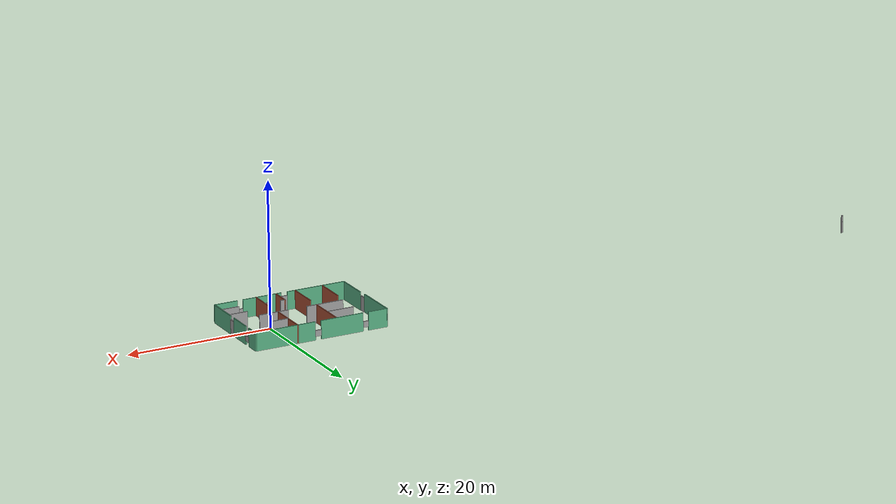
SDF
<?xml version='1.0'?>
<sdf version='1.6'>
  <model name='build1'>
    <pose frame=''>-39.8347 0.470993 0 0 -0 0</pose>
    <link name='Door_0'>
      <collision name='Door_0_Collision'>
        <geometry>
          <box>
            <size>0.9 0.17 2</size>
          </box>
        </geometry>
        <pose frame=''>0 0 1 0 -0 0</pose>
      </collision>
      <visual name='Door_0_Visual'>
        <pose frame=''>0 0 1 0 -0 0</pose>
        <geometry>
          <box>
            <size>0.9 0.17 2</size>
          </box>
        </geometry>
        <material>
          <script>
            <uri>file://media/materials/scripts/gazebo.material</uri>
            <name>Gazebo/Grey</name>
          </script>
        </material>
      </visual>
      <pose frame=''>45.0843 -0.717409 0 0 -0 1.57457</pose>
    </link>
    <link name='Door_1'>
      <collision name='Door_1_Collision'>
        <geometry>
          <box>
            <size>0.9 0.17 2</size>
          </box>
        </geometry>
        <pose frame=''>0 0 1 0 -0 0</pose>
      </collision>
      <visual name='Door_1_Visual'>
        <pose frame=''>0 0 1 0 -0 0</pose>
        <geometry>
          <box>
            <size>0.9 0.17 2</size>
          </box>
        </geometry>
        <material>
          <script>
            <uri>file://media/materials/scripts/gazebo.material</uri>
            <name>Gazebo/Grey</name>
          </script>
        </material>
      </visual>
      <pose frame=''>26.4039 -0.738595 0 0 0 -1.54814</pose>
    </link>
    <link name='Door_2'>
      <collision name='Door_2_Collision'>
        <geometry>
          <box>
            <size>0.9 0.17 2</size>
          </box>
        </geometry>
        <pose frame=''>0 0 1 0 -0 0</pose>
      </collision>
      <visual name='Door_2_Visual'>
        <pose frame=''>0 0 1 0 -0 0</pose>
        <geometry>
          <box>
            <size>0.9 0.17 2</size>
          </box>
        </geometry>
        <material>
          <script>
            <uri>file://media/materials/scripts/gazebo.material</uri>
            <name>Gazebo/Grey</name>
          </script>
        </material>
      </visual>
      <pose frame=''>35.2042 -5.93481 0 0 -0 0</pose>
    </link>
    <link name='Wall_11'>
      <collision name='Wall_11_Collision'>
        <geometry>
          <box>
            <size>0.25 0.15 2.5</size>
          </box>
        </geometry>
        <pose frame=''>0 0 1.25 0 -0 0</pose>
      </collision>
      <visual name='Wall_11_Visual'>
        <pose frame=''>0 0 1.25 0 -0 0</pose>
        <geometry>
          <box>
            <size>0.25 0.15 2.5</size>
          </box>
        </geometry>
        <material>
          <script>
            <uri>file://media/materials/scripts/gazebo.material</uri>
            <name>Gazebo/Grey</name>
          </script>
          <ambient>1 1 1 1</ambient>
        </material>
        <meta>
          <layer>0</layer>
        </meta>
      </visual>
      <pose frame=''>-45.0458 2.82702 0 0 -0 3.14159</pose>
    </link>
    <link name='Wall_12'>
      <collision name='Wall_12_Collision'>
        <geometry>
          <box>
            <size>0.16 0.15 2.5</size>
          </box>
        </geometry>
        <pose frame=''>0 0 1.25 0 -0 0</pose>
      </collision>
      <visual name='Wall_12_Visual'>
        <pose frame=''>0 0 1.25 0 -0 0</pose>
        <geometry>
          <box>
            <size>0.16 0.15 2.5</size>
          </box>
        </geometry>
        <material>
          <script>
            <uri>file://media/materials/scripts/gazebo.material</uri>
            <name>Gazebo/Grey</name>
          </script>
          <ambient>1 1 1 1</ambient>
        </material>
        <meta>
          <layer>0</layer>
        </meta>
      </visual>
      <pose frame=''>-45.0908 2.82702 0 0 -0 0</pose>
    </link>
    <link name='Wall_13'>
      <collision name='Wall_13_Collision'>
        <geometry>
          <box>
            <size>0.16 0.15 2.5</size>
          </box>
        </geometry>
        <pose frame=''>0 0 1.25 0 -0 0</pose>
      </collision>
      <visual name='Wall_13_Visual'>
        <pose frame=''>0 0 1.25 0 -0 0</pose>
        <geometry>
          <box>
            <size>0.16 0.15 2.5</size>
          </box>
        </geometry>
        <material>
          <script>
            <uri>file://media/materials/scripts/gazebo.material</uri>
            <name>Gazebo/Grey</name>
          </script>
          <ambient>1 1 1 1</ambient>
        </material>
        <meta>
          <layer>0</layer>
        </meta>
      </visual>
      <pose frame=''>-45.0808 2.82702 0 0 -0 0</pose>
    </link>
    <link name='Wall_17'>
      <collision name='Wall_17_Collision'>
        <geometry>
          <box>
            <size>6.25 0.15 2.5</size>
          </box>
        </geometry>
        <pose frame=''>0 0 1.25 0 -0 0</pose>
      </collision>
      <visual name='Wall_17_Visual'>
        <pose frame=''>0 0 1.25 0 -0 0</pose>
        <geometry>
          <box>
            <size>6.25 0.15 2.5</size>
          </box>
        </geometry>
        <material>
          <script>
            <uri>file://media/materials/scripts/gazebo.material</uri>
            <name>Gazebo/Grey</name>
          </script>
          <ambient>0.333333 0.666667 0.498039 1</ambient>
        </material>
        <meta>
          <layer>0</layer>
        </meta>
      </visual>
      <pose frame=''>26.3777 2.87375 0 0 -0 1.5708</pose>
    </link>
    <link name='Wall_18'>
      <collision name='Wall_18_Collision'>
        <geometry>
          <box>
            <size>2.75 0.15 2.5</size>
          </box>
        </geometry>
        <pose frame=''>0 0 1.25 0 -0 0</pose>
      </collision>
      <visual name='Wall_18_Visual'>
        <pose frame=''>0 0 1.25 0 -0 0</pose>
        <geometry>
          <box>
            <size>2.75 0.15 2.5</size>
          </box>
        </geometry>
        <material>
          <script>
            <uri>file://media/materials/scripts/gazebo.material</uri>
            <name>Gazebo/Grey</name>
          </script>
          <ambient>0.333333 0.666667 0.498039 1</ambient>
        </material>
        <meta>
          <layer>0</layer>
        </meta>
      </visual>
      <pose frame=''>27.6777 5.92375 0 0 -0 0</pose>
    </link>
    <link name='Wall_20'>
      <collision name='Wall_20_Collision'>
        <geometry>
          <box>
            <size>6 0.15 2.5</size>
          </box>
        </geometry>
        <pose frame=''>0 0 1.25 0 -0 0</pose>
      </collision>
      <visual name='Wall_20_Visual'>
        <pose frame=''>0 0 1.25 0 -0 0</pose>
        <geometry>
          <box>
            <size>6 0.15 2.5</size>
          </box>
        </geometry>
        <material>
          <script>
            <uri>file://media/materials/scripts/gazebo.material</uri>
            <name>Gazebo/Grey</name>
          </script>
          <ambient>0.333333 0.666667 0.498039 1</ambient>
        </material>
        <meta>
          <layer>0</layer>
        </meta>
      </visual>
      <pose frame=''>32.8366 5.92903 0 0 -0 0</pose>
    </link>
    <link name='Wall_22'>
      <collision name='Wall_22_Collision'>
        <geometry>
          <box>
            <size>8.5 0.15 2.5</size>
          </box>
        </geometry>
        <pose frame=''>0 0 1.25 0 -0 0</pose>
      </collision>
      <visual name='Wall_22_Visual'>
        <pose frame=''>0 0 1.25 0 -0 0</pose>
        <geometry>
          <box>
            <size>8.5 0.15 2.5</size>
          </box>
        </geometry>
        <material>
          <script>
            <uri>file://media/materials/scripts/gazebo.material</uri>
            <name>Gazebo/Grey</name>
          </script>
          <ambient>0.333333 0.666667 0.498039 1</ambient>
        </material>
        <meta>
          <layer>0</layer>
        </meta>
      </visual>
      <pose frame=''>40.8919 5.93293 0 0 -0 0</pose>
    </link>
    <link name='Wall_25'>
      <collision name='Wall_25_Collision'>
        <geometry>
          <box>
            <size>2 0.15 2.5</size>
          </box>
        </geometry>
        <pose frame=''>0 0 1.25 0 -0 0</pose>
      </collision>
      <visual name='Wall_25_Visual'>
        <pose frame=''>0 0 1.25 0 -0 0</pose>
        <geometry>
          <box>
            <size>2 0.15 2.5</size>
          </box>
        </geometry>
        <material>
          <script>
            <uri>file://media/materials/scripts/gazebo.material</uri>
            <name>Gazebo/Grey</name>
          </script>
          <ambient>0.333333 0.666667 0.498039 1</ambient>
        </material>
        <meta>
          <layer>0</layer>
        </meta>
      </visual>
      <pose frame=''>45.0669 5.00793 0 0 0 -1.5708</pose>
    </link>
    <link name='Wall_27'>
      <collision name='Wall_27_Collision'>
        <geometry>
          <box>
            <size>3.5 0.15 2.5</size>
          </box>
        </geometry>
        <pose frame=''>0 0 1.25 0 -0 0</pose>
      </collision>
      <visual name='Wall_27_Visual'>
        <pose frame=''>0 0 1.25 0 -0 0</pose>
        <geometry>
          <box>
            <size>3.5 0.15 2.5</size>
          </box>
        </geometry>
        <material>
          <script>
            <uri>file://media/materials/scripts/gazebo.material</uri>
            <name>Gazebo/Grey</name>
          </script>
          <ambient>0.333333 0.666667 0.498039 1</ambient>
        </material>
        <meta>
          <layer>0</layer>
        </meta>
      </visual>
      <pose frame=''>45.0839 1.47452 0 0 0 -1.5708</pose>
    </link>
    <link name='Wall_29'>
      <collision name='Wall_29_Collision'>
        <geometry>
          <box>
            <size>4.75 0.15 2.5</size>
          </box>
        </geometry>
        <pose frame=''>0 0 1.25 0 -0 0</pose>
      </collision>
      <visual name='Wall_29_Visual'>
        <pose frame=''>0 0 1.25 0 -0 0</pose>
        <geometry>
          <box>
            <size>4.75 0.15 2.5</size>
          </box>
        </geometry>
        <material>
          <script>
            <uri>file://media/materials/scripts/gazebo.material</uri>
            <name>Gazebo/Grey</name>
          </script>
          <ambient>0.333333 0.666667 0.498039 1</ambient>
        </material>
        <meta>
          <layer>0</layer>
        </meta>
      </visual>
      <pose frame=''>26.4915 -3.62589 0 0 0 -1.5708</pose>
    </link>
    <link name='Wall_30'>
      <collision name='Wall_30_Collision'>
        <geometry>
          <box>
            <size>7.25 0.15 2.5</size>
          </box>
        </geometry>
        <pose frame=''>0 0 1.25 0 -0 0</pose>
      </collision>
      <visual name='Wall_30_Visual'>
        <pose frame=''>0 0 1.25 0 -0 0</pose>
        <geometry>
          <box>
            <size>7.25 0.15 2.5</size>
          </box>
        </geometry>
        <material>
          <script>
            <uri>file://media/materials/scripts/gazebo.material</uri>
            <name>Gazebo/Grey</name>
          </script>
          <ambient>0.333333 0.666667 0.498039 1</ambient>
        </material>
        <meta>
          <layer>0</layer>
        </meta>
      </visual>
      <pose frame=''>30.0415 -5.92589 0 0 -0 0</pose>
    </link>
    <link name='Wall_31'>
      <collision name='Wall_31_Collision'>
        <geometry>
          <box>
            <size>4.5 0.15 2.5</size>
          </box>
        </geometry>
        <pose frame=''>0 0 1.25 0 -0 0</pose>
      </collision>
      <visual name='Wall_31_Visual'>
        <pose frame=''>0 0 1.25 0 -0 0</pose>
        <geometry>
          <box>
            <size>4.5 0.15 2.5</size>
          </box>
        </geometry>
        <material>
          <script>
            <uri>file://media/materials/scripts/gazebo.material</uri>
            <name>Gazebo/Bricks</name>
          </script>
          <ambient>1 1 1 1</ambient>
        </material>
        <meta>
          <layer>0</layer>
        </meta>
      </visual>
      <pose frame=''>33.5915 -3.75089 0 0 -0 1.5708</pose>
    </link>
    <link name='Wall_33'>
      <collision name='Wall_33_Collision'>
        <geometry>
          <box>
            <size>1.25 0.15 2.5</size>
          </box>
        </geometry>
        <pose frame=''>0 0 1.25 0 -0 0</pose>
      </collision>
      <visual name='Wall_33_Visual'>
        <pose frame=''>0 0 1.25 0 -0 0</pose>
        <geometry>
          <box>
            <size>1.25 0.15 2.5</size>
          </box>
        </geometry>
        <material>
          <script>
            <uri>file://media/materials/scripts/gazebo.material</uri>
            <name>Gazebo/Grey</name>
          </script>
          <ambient>0.333333 0.666667 0.498039 1</ambient>
        </material>
        <meta>
          <layer>0</layer>
        </meta>
      </visual>
      <pose frame=''>34.1415 -5.92589 0 0 -0 0</pose>
    </link>
    <link name='Wall_36'>
      <collision name='Wall_36_Collision'>
        <geometry>
          <box>
            <size>5.5 0.15 2.5</size>
          </box>
        </geometry>
        <pose frame=''>0 0 1.25 0 -0 0</pose>
      </collision>
      <visual name='Wall_36_Visual'>
        <pose frame=''>0 0 1.25 0 -0 0</pose>
        <geometry>
          <box>
            <size>5.5 0.15 2.5</size>
          </box>
        </geometry>
        <material>
          <script>
            <uri>file://media/materials/scripts/gazebo.material</uri>
            <name>Gazebo/Grey</name>
          </script>
          <ambient>0.333333 0.666667 0.498039 1</ambient>
        </material>
        <meta>
          <layer>0</layer>
        </meta>
      </visual>
      <pose frame=''>38.3813 -5.91675 0 0 -0 0</pose>
    </link>
    <link name='Wall_38'>
      <collision name='Wall_38_Collision'>
        <geometry>
          <box>
            <size>4.5 0.15 2.5</size>
          </box>
        </geometry>
        <pose frame=''>0 0 1.25 0 -0 0</pose>
      </collision>
      <visual name='Wall_38_Visual'>
        <pose frame=''>0 0 1.25 0 -0 0</pose>
        <geometry>
          <box>
            <size>4.5 0.15 2.5</size>
          </box>
        </geometry>
        <material>
          <script>
            <uri>file://media/materials/scripts/gazebo.material</uri>
            <name>Gazebo/Bricks</name>
          </script>
          <ambient>1 1 1 1</ambient>
        </material>
        <meta>
          <layer>0</layer>
        </meta>
      </visual>
      <pose frame=''>39.2091 -3.74259 0 0 -0 1.5708</pose>
    </link>
    <link name='Wall_40'>
      <collision name='Wall_40_Collision'>
        <geometry>
          <box>
            <size>4.75 0.15 2.5</size>
          </box>
        </geometry>
        <pose frame=''>0 0 1.25 0 -0 0</pose>
      </collision>
      <visual name='Wall_40_Visual'>
        <pose frame=''>0 0 1.25 0 -0 0</pose>
        <geometry>
          <box>
            <size>4.75 0.15 2.5</size>
          </box>
        </geometry>
        <material>
          <script>
            <uri>file://media/materials/scripts/gazebo.material</uri>
            <name>Gazebo/Grey</name>
          </script>
          <ambient>0.333333 0.666667 0.498039 1</ambient>
        </material>
        <meta>
          <layer>0</layer>
        </meta>
      </visual>
      <pose frame=''>45.0909 -3.55181 0 0 0 -1.5708</pose>
    </link>
    <link name='Wall_42'>
      <collision name='Wall_42_Collision'>
        <geometry>
          <box>
            <size>3.25 0.15 2.5</size>
          </box>
        </geometry>
        <pose frame=''>0 0 1.25 0 -0 0</pose>
      </collision>
      <visual name='Wall_42_Visual'>
        <pose frame=''>0 0 1.25 0 -0 0</pose>
        <geometry>
          <box>
            <size>3.25 0.15 2.5</size>
          </box>
        </geometry>
        <material>
          <script>
            <uri>file://media/materials/scripts/gazebo.material</uri>
            <name>Gazebo/Grey</name>
          </script>
          <ambient>0.333333 0.666667 0.498039 1</ambient>
        </material>
        <meta>
          <layer>0</layer>
        </meta>
      </visual>
      <pose frame=''>43.5458 -5.92059 0 0 -0 0</pose>
    </link>
    <link name='Wall_44'>
      <collision name='Wall_44_Collision'>
        <geometry>
          <box>
            <size>5.75 0.15 2.5</size>
          </box>
        </geometry>
        <pose frame=''>0 0 1.25 0 -0 0</pose>
      </collision>
      <visual name='Wall_44_Visual'>
        <pose frame=''>0 0 1.25 0 -0 0</pose>
        <geometry>
          <box>
            <size>5.75 0.15 2.5</size>
          </box>
        </geometry>
        <material>
          <script>
            <uri>file://media/materials/scripts/gazebo.material</uri>
            <name>Gazebo/Bricks</name>
          </script>
          <ambient>1 1 1 1</ambient>
        </material>
        <meta>
          <layer>0</layer>
        </meta>
      </visual>
      <pose frame=''>33.6137 3.09618 0 0 0 -1.5708</pose>
    </link>
    <link name='Wall_46'>
      <collision name='Wall_46_Collision'>
        <geometry>
          <box>
            <size>2.75 0.15 2.5</size>
          </box>
        </geometry>
        <pose frame=''>0 0 1.25 0 -0 0</pose>
      </collision>
      <visual name='Wall_46_Visual'>
        <pose frame=''>0 0 1.25 0 -0 0</pose>
        <geometry>
          <box>
            <size>2.75 0.15 2.5</size>
          </box>
        </geometry>
        <material>
          <script>
            <uri>file://media/materials/scripts/gazebo.material</uri>
            <name>Gazebo/Bricks</name>
          </script>
          <ambient>1 1 1 1</ambient>
        </material>
        <meta>
          <layer>0</layer>
        </meta>
      </visual>
      <pose frame=''>36.3664 -4.60126 0 0 -0 1.5708</pose>
    </link>
    <link name='Wall_49'>
      <collision name='Wall_49_Collision'>
        <geometry>
          <box>
            <size>1 0.15 2.5</size>
          </box>
        </geometry>
        <pose frame=''>0 0 1.25 0 -0 0</pose>
      </collision>
      <visual name='Wall_49_Visual'>
        <pose frame=''>0 0 1.25 0 -0 0</pose>
        <geometry>
          <box>
            <size>1 0.15 2.5</size>
          </box>
        </geometry>
        <material>
          <script>
            <uri>file://media/materials/scripts/gazebo.material</uri>
            <name>Gazebo/Grey</name>
          </script>
          <ambient>1 1 1 1</ambient>
        </material>
        <meta>
          <layer>0</layer>
        </meta>
      </visual>
      <pose frame=''>38.7765 -3.30104 0 0 -0 0</pose>
    </link>
    <link name='Wall_51'>
      <collision name='Wall_51_Collision'>
        <geometry>
          <box>
            <size>0.75 0.15 2.5</size>
          </box>
        </geometry>
        <pose frame=''>0 0 1.25 0 -0 0</pose>
      </collision>
      <visual name='Wall_51_Visual'>
        <pose frame=''>0 0 1.25 0 -0 0</pose>
        <geometry>
          <box>
            <size>0.75 0.15 2.5</size>
          </box>
        </geometry>
        <material>
          <script>
            <uri>file://media/materials/scripts/gazebo.material</uri>
            <name>Gazebo/Grey</name>
          </script>
          <ambient>1 1 1 1</ambient>
        </material>
        <meta>
          <layer>0</layer>
        </meta>
      </visual>
      <pose frame=''>36.6664 -3.30126 0 0 -0 0</pose>
    </link>
    <link name='Wall_54'>
      <collision name='Wall_54_Collision'>
        <geometry>
          <box>
            <size>5.75 0.15 2.5</size>
          </box>
        </geometry>
        <pose frame=''>0 0 1.25 0 -0 0</pose>
      </collision>
      <visual name='Wall_54_Visual'>
        <pose frame=''>0 0 1.25 0 -0 0</pose>
        <geometry>
          <box>
            <size>5.75 0.15 2.5</size>
          </box>
        </geometry>
        <material>
          <script>
            <uri>file://media/materials/scripts/gazebo.material</uri>
            <name>Gazebo/Bricks</name>
          </script>
          <ambient>1 1 1 1</ambient>
        </material>
        <meta>
          <layer>0</layer>
        </meta>
      </visual>
      <pose frame=''>39.1327 3.13368 0 0 -0 1.5708</pose>
    </link>
    <link name='Wall_56'>
      <collision name='Wall_56_Collision'>
        <geometry>
          <box>
            <size>1.5 0.15 2.5</size>
          </box>
        </geometry>
        <pose frame=''>0 0 1.25 0 -0 0</pose>
      </collision>
      <visual name='Wall_56_Visual'>
        <pose frame=''>0 0 1.25 0 -0 0</pose>
        <geometry>
          <box>
            <size>1.5 0.15 2.5</size>
          </box>
        </geometry>
        <material>
          <script>
            <uri>file://media/materials/scripts/gazebo.material</uri>
            <name>Gazebo/Grey</name>
          </script>
          <ambient>1 1 1 1</ambient>
        </material>
        <meta>
          <layer>0</layer>
        </meta>
      </visual>
      <pose frame=''>34.2887 0.296175 0 0 -0 0</pose>
    </link>
    <link name='Wall_59'>
      <collision name='Wall_59_Collision'>
        <geometry>
          <box>
            <size>1.5 0.15 2.5</size>
          </box>
        </geometry>
        <pose frame=''>0 0 1.25 0 -0 0</pose>
      </collision>
      <visual name='Wall_59_Visual'>
        <pose frame=''>0 0 1.25 0 -0 0</pose>
        <geometry>
          <box>
            <size>1.5 0.15 2.5</size>
          </box>
        </geometry>
        <material>
          <script>
            <uri>file://media/materials/scripts/gazebo.material</uri>
            <name>Gazebo/Grey</name>
          </script>
          <ambient>1 1 1 1</ambient>
        </material>
        <meta>
          <layer>0</layer>
        </meta>
      </visual>
      <pose frame=''>38.4495 0.333007 0 0 -0 0</pose>
    </link>
    <link name='Wall_61'>
      <collision name='Wall_61_Collision'>
        <geometry>
          <box>
            <size>2.75 0.15 2.5</size>
          </box>
        </geometry>
        <pose frame=''>0 0 1.25 0 -0 0</pose>
      </collision>
      <visual name='Wall_61_Visual'>
        <pose frame=''>0 0 1.25 0 -0 0</pose>
        <geometry>
          <box>
            <size>2.75 0.15 2.5</size>
          </box>
        </geometry>
        <material>
          <script>
            <uri>file://media/materials/scripts/gazebo.material</uri>
            <name>Gazebo/Grey</name>
          </script>
          <ambient>1 1 1 1</ambient>
        </material>
        <meta>
          <layer>0</layer>
        </meta>
      </visual>
      <pose frame=''>40.4385 3.17971 0 0 -0 0</pose>
    </link>
    <link name='Wall_63'>
      <collision name='Wall_63_Collision'>
        <geometry>
          <box>
            <size>2.75 0.15 2.5</size>
          </box>
        </geometry>
        <pose frame=''>0 0 1.25 0 -0 0</pose>
      </collision>
      <visual name='Wall_63_Visual'>
        <pose frame=''>0 0 1.25 0 -0 0</pose>
        <geometry>
          <box>
            <size>2.75 0.15 2.5</size>
          </box>
        </geometry>
        <material>
          <script>
            <uri>file://media/materials/scripts/gazebo.material</uri>
            <name>Gazebo/Grey</name>
          </script>
          <ambient>1 1 1 1</ambient>
        </material>
        <meta>
          <layer>0</layer>
        </meta>
      </visual>
      <pose frame=''>40.4245 0.333007 0 0 -0 0</pose>
    </link>
    <link name='Wall_65'>
      <collision name='Wall_65_Collision'>
        <geometry>
          <box>
            <size>2.5 0.15 2.5</size>
          </box>
        </geometry>
        <pose frame=''>0 0 1.25 0 -0 0</pose>
      </collision>
      <visual name='Wall_65_Visual'>
        <pose frame=''>0 0 1.25 0 -0 0</pose>
        <geometry>
          <box>
            <size>2.5 0.15 2.5</size>
          </box>
        </geometry>
        <material>
          <script>
            <uri>file://media/materials/scripts/gazebo.material</uri>
            <name>Gazebo/Grey</name>
          </script>
          <ambient>1 1 1 1</ambient>
        </material>
        <meta>
          <layer>0</layer>
        </meta>
      </visual>
      <pose frame=''>43.7989 -1.67153 0 0 -0 0</pose>
    </link>
    <link name='Wall_67'>
      <collision name='Wall_67_Collision'>
        <geometry>
          <box>
            <size>2.5 0.15 2.5</size>
          </box>
        </geometry>
        <pose frame=''>0 0 1.25 0 -0 0</pose>
      </collision>
      <visual name='Wall_67_Visual'>
        <pose frame=''>0 0 1.25 0 -0 0</pose>
        <geometry>
          <box>
            <size>2.5 0.15 2.5</size>
          </box>
        </geometry>
        <material>
          <script>
            <uri>file://media/materials/scripts/gazebo.material</uri>
            <name>Gazebo/Grey</name>
          </script>
          <ambient>1 1 1 1</ambient>
        </material>
        <meta>
          <layer>0</layer>
        </meta>
      </visual>
      <pose frame=''>43.897 -3.86099 0 0 -0 0</pose>
    </link>
    <link name='Wall_69'>
      <collision name='Wall_69_Collision'>
        <geometry>
          <box>
            <size>3.84847 0.15 2.5</size>
          </box>
        </geometry>
        <pose frame=''>0 0 1.25 0 -0 0</pose>
      </collision>
      <visual name='Wall_69_Visual'>
        <pose frame=''>0 0 1.25 0 -0 0</pose>
        <geometry>
          <box>
            <size>3.84847 0.15 2.5</size>
          </box>
        </geometry>
        <material>
          <script>
            <uri>file://media/materials/scripts/gazebo.material</uri>
            <name>Gazebo/Grey</name>
          </script>
          <ambient>1 1 1 1</ambient>
        </material>
        <meta>
          <layer>0</layer>
        </meta>
      </visual>
      <pose frame=''>31.7644 0.298709 0 0 0 -0.00137</pose>
    </link>
    <link name='Wall_71'>
      <collision name='Wall_71_Collision'>
        <geometry>
          <box>
            <size>3.75 0.15 2.5</size>
          </box>
        </geometry>
        <pose frame=''>0 0 1.25 0 -0 0</pose>
      </collision>
      <visual name='Wall_71_Visual'>
        <pose frame=''>0 0 1.25 0 -0 0</pose>
        <geometry>
          <box>
            <size>3.75 0.15 2.5</size>
          </box>
        </geometry>
        <material>
          <script>
            <uri>file://media/materials/scripts/gazebo.material</uri>
            <name>Gazebo/Grey</name>
          </script>
          <ambient>1 1 1 1</ambient>
        </material>
        <meta>
          <layer>0</layer>
        </meta>
      </visual>
      <pose frame=''>31.7584 3.28558 0 0 -0 0</pose>
    </link>
    <link name='Wall_73'>
      <collision name='Wall_73_Collision'>
        <geometry>
          <box>
            <size>4.5 0.15 2.5</size>
          </box>
        </geometry>
        <pose frame=''>0 0 1.25 0 -0 0</pose>
      </collision>
      <visual name='Wall_73_Visual'>
        <pose frame=''>0 0 1.25 0 -0 0</pose>
        <geometry>
          <box>
            <size>4.5 0.15 2.5</size>
          </box>
        </geometry>
        <material>
          <script>
            <uri>file://media/materials/scripts/gazebo.material</uri>
            <name>Gazebo/Bricks</name>
          </script>
          <ambient>1 1 1 1</ambient>
        </material>
        <meta>
          <layer>0</layer>
        </meta>
      </visual>
      <pose frame=''>29.6673 -3.75868 0 0 -0 1.5708</pose>
    </link>
    <link name='Window_1'>
      <collision name='Window_1_Collision'>
        <geometry>
          <box>
            <size>0.8 0.17 0.8</size>
          </box>
        </geometry>
        <pose frame=''>0 0 0.4 0 -0 0</pose>
      </collision>
      <visual name='Window_1_Visual'>
        <pose frame=''>0 0 0.4 0 -0 0</pose>
        <geometry>
          <box>
            <size>0.8 0.17 0.8</size>
          </box>
        </geometry>
        <material>
          <script>
            <uri>file://media/materials/scripts/gazebo.material</uri>
            <name>Gazebo/Grey</name>
          </script>
        </material>
      </visual>
      <pose frame=''>29.4439 5.91315 0.5 0 -0 0</pose>
    </link>
    <link name='Window_2'>
      <collision name='Window_2_Collision'>
        <geometry>
          <box>
            <size>0.826516 0.2 0.8</size>
          </box>
        </geometry>
        <pose frame=''>0 0 0.4 0 -0 0</pose>
      </collision>
      <visual name='Window_2_Visual'>
        <pose frame=''>0 0 0.4 0 -0 0</pose>
        <geometry>
          <box>
            <size>0.826516 0.2 0.8</size>
          </box>
        </geometry>
        <material>
          <script>
            <uri>file://media/materials/scripts/gazebo.material</uri>
            <name>Gazebo/Grey</name>
          </script>
        </material>
      </visual>
      <pose frame=''>36.2567 5.92809 0.5 0 -0 0</pose>
    </link>
    <link name='Window_3'>
      <collision name='Window_3_Collision'>
        <geometry>
          <box>
            <size>0.8 0.17 0.8</size>
          </box>
        </geometry>
        <pose frame=''>0 0 0.4 0 -0 0</pose>
      </collision>
      <visual name='Window_3_Visual'>
        <pose frame=''>0 0 0.4 0 -0 0</pose>
        <geometry>
          <box>
            <size>0.8 0.17 0.8</size>
          </box>
        </geometry>
        <material>
          <script>
            <uri>file://media/materials/scripts/gazebo.material</uri>
            <name>Gazebo/Grey</name>
          </script>
        </material>
      </visual>
      <pose frame=''>45.0766 3.62228 0.5 0 -0 1.58225</pose>
    </link>
    <link name='Window_4'>
      <collision name='Window_4_Collision'>
        <geometry>
          <box>
            <size>0.8 0.17 0.8</size>
          </box>
        </geometry>
        <pose frame=''>0 0 0.4 0 -0 0</pose>
      </collision>
      <visual name='Window_4_Visual'>
        <pose frame=''>0 0 0.4 0 -0 0</pose>
        <geometry>
          <box>
            <size>0.8 0.17 0.8</size>
          </box>
        </geometry>
        <material>
          <script>
            <uri>file://media/materials/scripts/gazebo.material</uri>
            <name>Gazebo/Grey</name>
          </script>
        </material>
      </visual>
      <pose frame=''>41.5249 -5.92075 0.5 0 -0 0</pose>
    </link>
    <static>1</static>
  </model>
</sdf>
